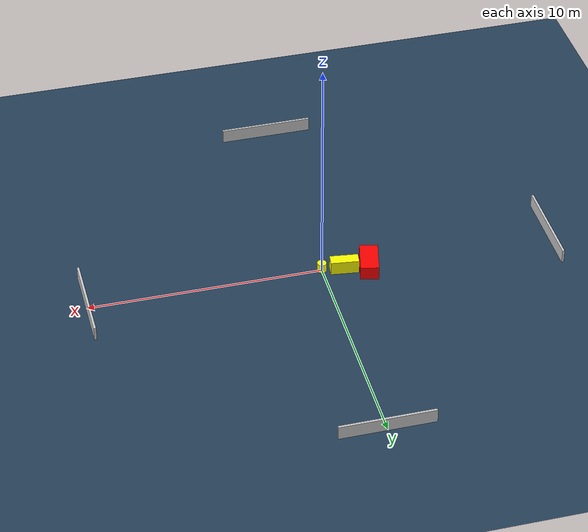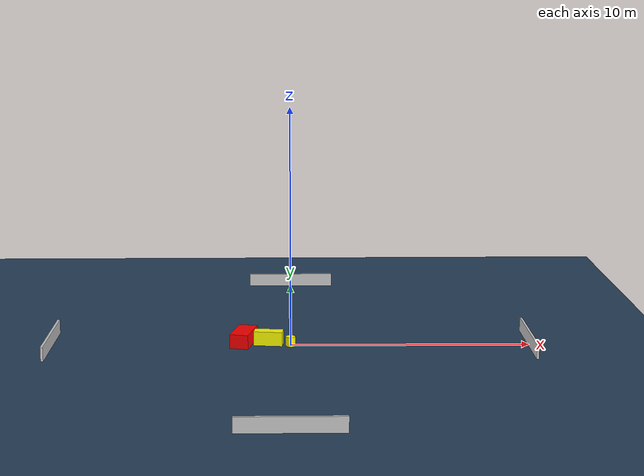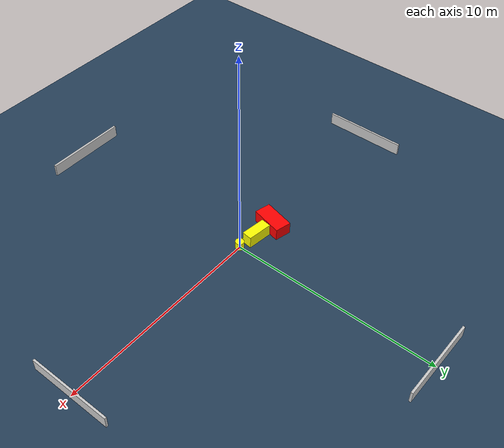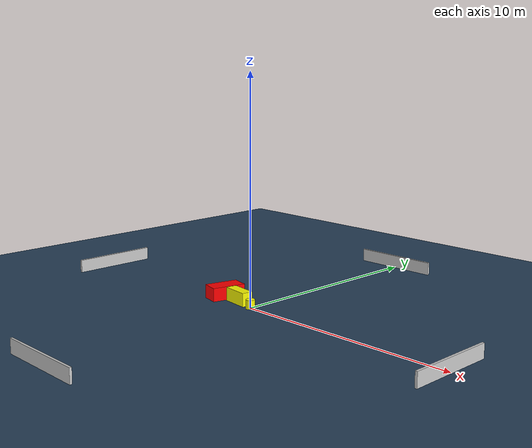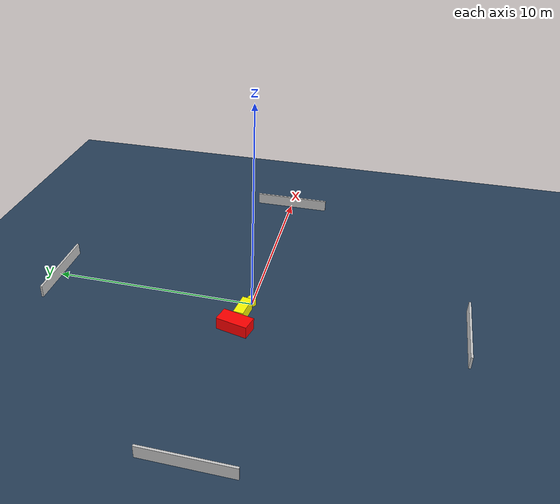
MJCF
<?xml version="1.0" ?>
<mujoco model="generated_environment">
  <option timestep="0.01" integrator="RK4" cone="elliptic"/>
  <default>
    <geom density="1"/>
  </default>
  <asset>
    <texture builtin="gradient" height="3072" name="skybox" rgb1="0.3 0.5 0.7" rgb2="0 0 0" type="skybox" width="512"/>
    <texture builtin="checker" height="300" name="groundplane" rgb1="0.2 0.3 0.4" rgb2="0.1 0.2 0.3" type="2d" width="300"/>
    <material name="groundplane" reflectance="0.2" texrepeat="5 5" texture="groundplane"/>
  </asset>
  <worldbody>
    <light dir="0 0 -1" directional="true" pos="0 0 1.5"/>
    <geom condim="3" friction="0.5 0.005 0.001" material="groundplane" name="floor" pos="0 0 0" size="0 0 0.05" type="plane"/>
    <body name="walls">
      <geom name="wall_1" condim="4" pos="-10.0 0.0 0.3" rgba="0.800000011920929 0.800000011920929 0.800000011920929 1.0" size="0.05 2.0 0.3" type="box"/>
      <geom name="wall_2" condim="4" pos="10.0 0.0 0.3" rgba="0.800000011920929 0.800000011920929 0.800000011920929 1.0" size="0.05 2.0 0.3" type="box"/>
      <geom name="wall_3" condim="4" pos="0.0 -10.0 0.3" rgba="0.800000011920929 0.800000011920929 0.800000011920929 1.0" size="2.0 0.05 0.3" type="box"/>
      <geom name="wall_4" condim="4" pos="0.0 10.0 0.3" rgba="0.800000011920929 0.800000011920929 0.800000011920929 1.0" size="2.0 0.05 0.3" type="box"/>
    </body>
    <body name="robot">
      <joint name="joint_x" type="slide" pos="0 0 0" axis="1 0 0"/>
      <joint name="joint_y" type="slide" pos="0 0 0" axis="0 1 0"/>
      <geom name="robot" type="cylinder" pos="0.0 0.0 0.2" size="0.2 0.2 0.0" mass="5.0" friction="1.0 0.005 0.0001" condim="4" rgba="1.0 1.0 0.0 1.0"/>
    </body>
    <body name="obstacle_1_movable">
      <geom name="obstacle_1_movable" condim="4" pos="-0.9217232427398402 0.2106993915029614 0.3" euler="0 0 82.63036987382205" friction="0.0 0.005 0.001" rgba="1.0 1.0 0.0 1.0" size="0.24431867911644287 0.6024855373335439 0.3" type="box" mass="0.1"/>
      <joint type="free"/>
    </body>
    <body name="obstacle_2_static">
      <geom name="obstacle_2_static" condim="4" pos="-1.9686156901094032 0.31476428585296923 0.3" euler="0 0 76.42041892628771" friction="0.0 0.005 0.001" rgba="1.0 0.0 0.0 1.0" size="0.7659284318674333 0.39194129574777203 0.3" type="box"/>
    </body>
  </worldbody>
  <actuator>
    <motor name="actuator_x" joint="joint_x" gear="1" ctrlrange="-1 1"/>
    <motor name="actuator_y" joint="joint_y" gear="1" ctrlrange="-1 1"/>
  </actuator>
</mujoco>
